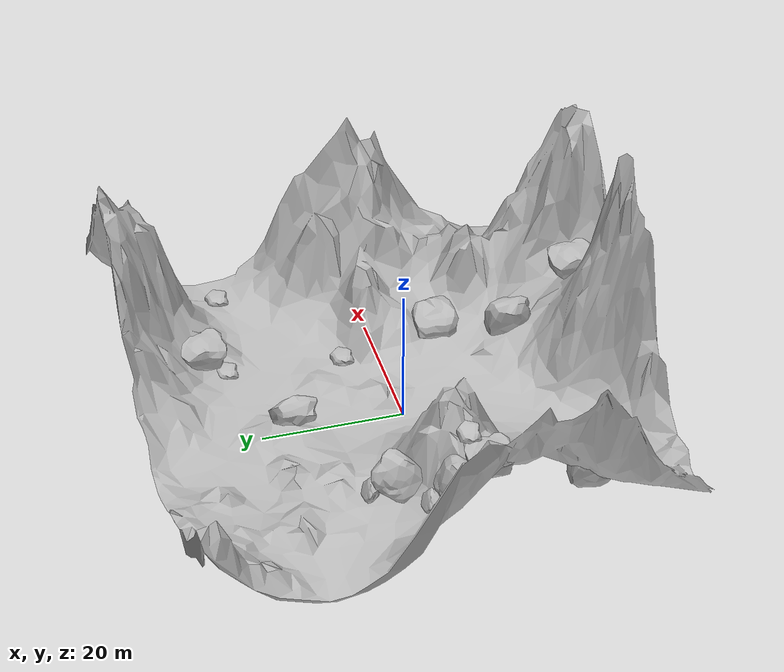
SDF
<sdf version="1.9">
 <world name="mountain_forest">
  <plugin name="ignition::gazebo::systems::Physics" filename="ignition-gazebo-physics-system"/>
  <plugin name="ignition::gazebo::systems::UserCommands" filename="ignition-gazebo-user-commands-system"/>
  <plugin name="ignition::gazebo::systems::SceneBroadcaster" filename="ignition-gazebo-scene-broadcaster-system"/>
  <plugin name="ignition::gazebo::systems::ParticleEmitter2" filename="ignition-gazebo-particle-emitter2-system"/>
  <plugin name="ignition::gazebo::systems::Sensors" filename="ignition-gazebo-sensors-system">
   <render_engine>ogre2</render_engine>
  </plugin>
  <gravity>0 0 -9.81</gravity>
  <magnetic_field>6e-06 2.3e-05 -4.2e-05</magnetic_field>
  <atmosphere type="adiabatic"/>
  <physics name="default_physics" type="ode">
   <max_step_size>0.01</max_step_size>
   <real_time_factor>1</real_time_factor>
   <real_time_update_rate>100</real_time_update_rate>
   <ode>
    <solver><type>quick</type><iters>25</iters><sor>1.3</sor></solver>
    <constraints>
     <cfm>0.0</cfm>
     <erp>0.2</erp>
     <contact_max_correcting_vel>100.0</contact_max_correcting_vel>
     <contact_surface_layer>0.001</contact_surface_layer>
    </constraints>
   </ode>
  </physics>
  <scene>
   <ambient>1 1 1 1</ambient>
   <background>0.6 0.8 1 1</background>
   <shadows>false</shadows>
   <grid>false</grid>
  </scene>
  <spherical_coordinates>
   <latitude_deg>0</latitude_deg>
   <longitude_deg>0</longitude_deg>
   <elevation>10</elevation>
   <heading_deg>0</heading_deg>
   <surface_model>EARTH_WGS84</surface_model>
  </spherical_coordinates>
  <include><uri>model://mountain_forest</uri><name>mountain_forest</name></include>
  <include><uri>model://rock2</uri><name>rock_2</name><pose>2.10581 15 1.92085 0 -0.814 0</pose></include>
  <include>
   <uri>model://rock2</uri>
   <name>rock_2_1</name>
   <pose>-18.9183 7.72946 4.13982 -0.711548 -0.731404 3.06097</pose>
  </include>
  <include>
   <uri>model://rock2</uri>
   <name>rock_2_2</name>
   <pose>13.7557 -9.25341 2.51551 0 1.28804 0</pose>
  </include>
  <include><uri>model://rock2</uri><name>rock_2_3</name><pose>-19.8736 -21.0366 0 0 -0 0</pose></include>
  <include><uri>model://rock2</uri><name>rock_2_4</name><pose>10.8024 -18.6377 2.84695 0 -0 0</pose></include>
  <include>
   <uri>model://rock2</uri>
   <name>rock_2_5</name>
   <pose>18.7823 23.9711 4.11951 3.14159 -1.36805 3.14159</pose>
  </include>
  <include>
   <uri>model://rock2</uri>
   <name>rock_2_6</name>
   <pose>-20.8929 -5.64475 10.1251 3.14159 -1.40505 3.14159</pose>
  </include>
  <include>
   <uri>model://rock2</uri>
   <name>rock_2_6_1</name>
   <pose>15.0957 -28.4351 11.777 3.14159 -1.40505 3.14159</pose>
  </include>
  <include>
   <uri>model://rock1</uri>
   <name>rock_1_1</name>
   <pose>-17.808 9.01672 2.78859 -1.05335 0 0</pose>
  </include>
  <include><uri>model://rock1</uri><name>rock_1_2</name><pose>13.7477 4.82278 0 0 -0 0</pose></include>
  <include><uri>model://rock1</uri><name>rock_1_3</name><pose>31.2617 18.5153 0 0 -0 0</pose></include>
  <include><uri>model://rock1</uri><name>rock_1_4</name><pose>14.8214 21.1238 0 0 -0 0</pose></include>
  <include><uri>model://rock1</uri><name>rock_1_5</name><pose>-11.2292 -17.5464 0 0 -0 0</pose></include>
  <include>
   <uri>model://rock1</uri>
   <name>rock_1_6</name>
   <pose>-25.8217 -6.57086 11.274 0 -0 0.627281</pose>
  </include>
  <include>
   <uri>model://rock1</uri>
   <name>rock_1_6_1</name>
   <pose>-19.9807 -3.46305 11.274 0 -0.231694 0</pose>
  </include>
  <include>
   <uri>model://rock2</uri>
   <name>rock_2_1_1</name>
   <pose>-23.8445 0.85448 5.66176 0.041053 -0.612029 1.55599</pose>
  </include>
  <include>
   <uri>model://rock1</uri>
   <name>rock_1_1_1</name>
   <pose>-23.577 2.35815 4.0371 -1.05335 0 0</pose>
  </include>
  <light name="sun" type="directional">
   <pose>0 0 100 0 -0 0</pose>
   <cast_shadows>false</cast_shadows>
   <intensity>5</intensity>
   <direction>-0.5 0.1 -0.9</direction>
   <diffuse>0.8 0.8 0.8 1</diffuse>
   <specular>0.8 0.8 0.8 1</specular>
   <attenuation><range>10</range><linear>1</linear><constant>1</constant><quadratic>0</quadratic></attenuation>
   <spot><inner_angle>0</inner_angle><outer_angle>0</outer_angle><falloff>0</falloff></spot>
  </light>
 </world>
</sdf>

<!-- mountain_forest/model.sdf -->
<sdf version="1.7">
<model name="mountain_forest">
    <static>true</static>
    <link name="mountain_forest">
        <pose>0 0 0 0 0 0</pose>
        <collision name="mountain_forest_collision">
            <geometry>
                <mesh>
                    <uri>model://mountain_forest/meshes/mountain_forest.dae</uri>
                </mesh>
            </geometry>
        </collision>
        <visual name="mountain_forest_visual">
            <geometry>
                <mesh>
                    <uri>model://mountain_forest/meshes/mountain_forest.dae</uri>
                </mesh>
            </geometry>
        </visual>
    </link>
</model>
</sdf>

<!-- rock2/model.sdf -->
<sdf version="1.7">
<model name="rock2">
    <static>true</static>
    <link name="link">
        <pose>0 0 0 0 0 0</pose>
        <collision name="collision">
            <geometry>
              <mesh>
                <uri>model://rock2/meshes/Rock2.dae</uri>
              </mesh>
            </geometry>
        </collision>
        <visual name="visual">
            <cast_shadows>false</cast_shadows>
            <geometry>
                <mesh>
                  <uri>model://rock2/meshes/Rock2.dae</uri>
                  <scale>1 1 1</scale>
                </mesh>
            </geometry>
        </visual>
    </link>
</model>
</sdf>

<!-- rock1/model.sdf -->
<sdf version="1.7">
<model name="rock1">
    <static>true</static>
    <link name="link">
        <pose>0 0 0 0 0 0</pose>
        <collision name="collision">
            <geometry>
                <mesh>
                  <uri>model://rock1/meshes/Rock1.dae</uri>
                </mesh>
            </geometry>
        </collision>
        <visual name="visual">
            <cast_shadows>false</cast_shadows>
            <geometry>
                <mesh>
                  <uri>model://rock1/meshes/Rock1.dae</uri>
                  <scale>1 1 1</scale>
                </mesh>
            </geometry>
        </visual>
    </link>
</model>
</sdf>
